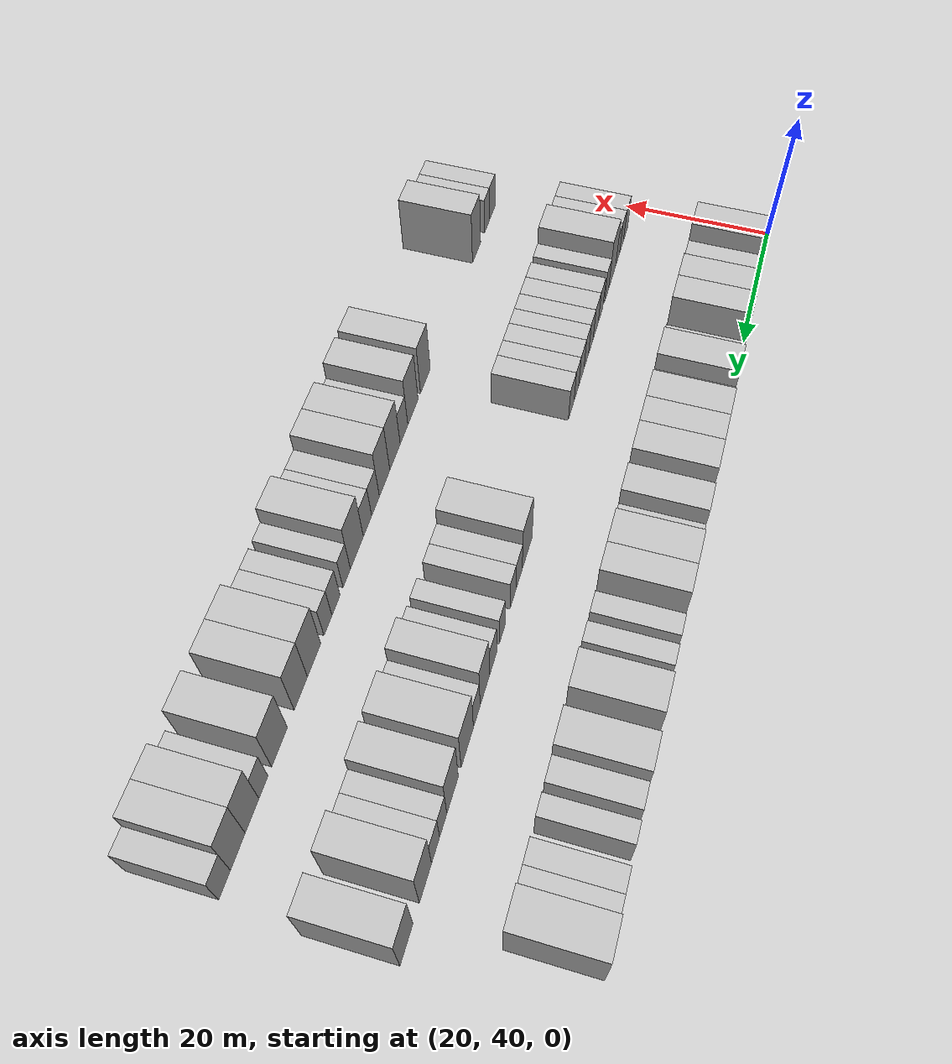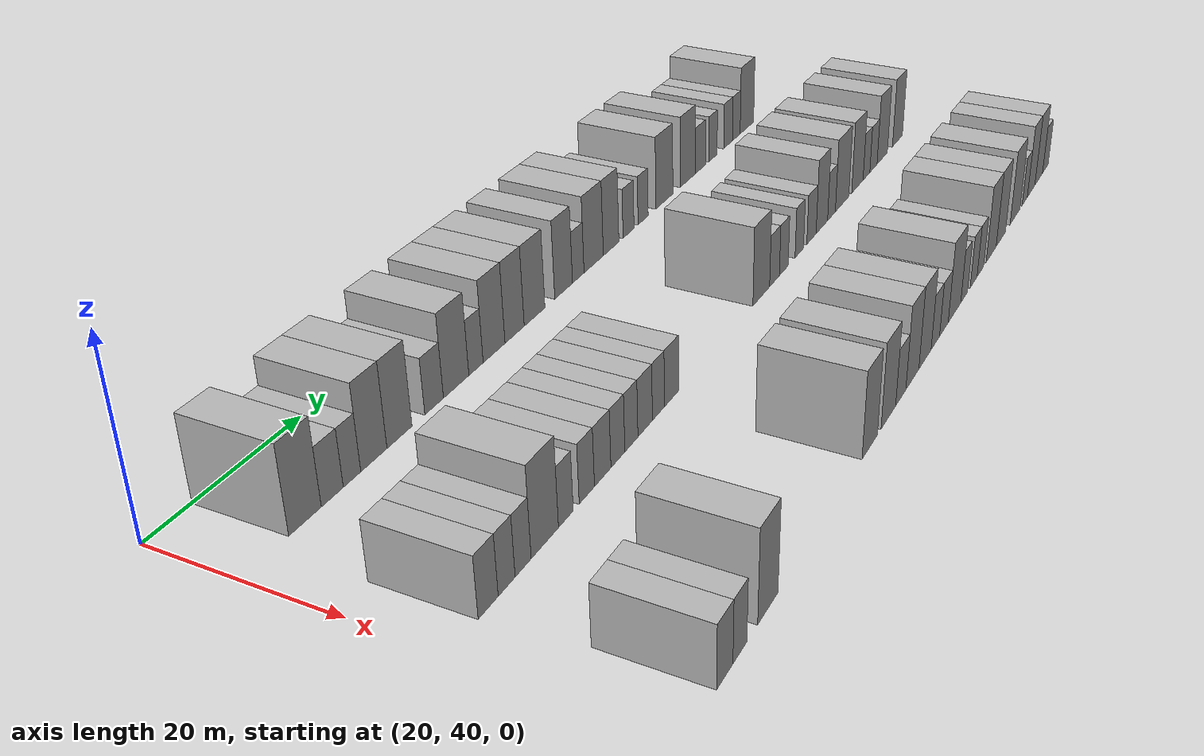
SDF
<sdf version="1.6">
 <world name="default">
  <model name="building_72">
   <static>1</static>
   <pose>25.0000 47.9524 0 0.000000 0.000000 0.000000</pose>
   <link name="link">
    <pose>0 0 4.50 0 0 0</pose>
    <collision name="collision"><geometry><box><size>10.0000 4.1715 9.0000</size></box></geometry></collision>
    <visual name="visual">
     <cast_shadows>0</cast_shadows>
     <geometry><box><size>10.0000 4.1715 9.0000</size></box></geometry>
     <material>
      <script>
       <uri>model://HANNAS_wall/materials/scripts</uri>
       <uri>model://HANNAS_wall/materials/textures</uri>
       <name>vrc/HANNAS_wall</name>
      </script>
     </material>
    </visual>
   </link>
  </model>
  <model name="building_73">
   <static>1</static>
   <pose>25.0000 51.5094 0 0.000000 0.000000 0.000000</pose>
   <link name="link">
    <pose>0 0 3.00 0 0 0</pose>
    <collision name="collision"><geometry><box><size>10.0000 2.9425 6.0000</size></box></geometry></collision>
    <visual name="visual">
     <cast_shadows>0</cast_shadows>
     <geometry><box><size>10.0000 2.9425 6.0000</size></box></geometry>
     <material>
      <script>
       <uri>model://HANNAS_wall/materials/scripts</uri>
       <uri>model://HANNAS_wall/materials/textures</uri>
       <name>vrc/HANNAS_wall</name>
      </script>
     </material>
    </visual>
   </link>
  </model>
  <model name="building_74">
   <static>1</static>
   <pose>25.0000 54.1895 0 0.000000 0.000000 0.000000</pose>
   <link name="link">
    <pose>0 0 3.00 0 0 0</pose>
    <collision name="collision"><geometry><box><size>10.0000 2.4178 6.0000</size></box></geometry></collision>
    <visual name="visual">
     <cast_shadows>0</cast_shadows>
     <geometry><box><size>10.0000 2.4178 6.0000</size></box></geometry>
     <material>
      <script>
       <uri>model://HANNAS_wall/materials/scripts</uri>
       <uri>model://HANNAS_wall/materials/textures</uri>
       <name>vrc/HANNAS_wall</name>
      </script>
     </material>
    </visual>
   </link>
  </model>
  <model name="building_75">
   <static>1</static>
   <pose>25.0000 57.2800 0 0.000000 0.000000 0.000000</pose>
   <link name="link">
    <pose>0 0 4.50 0 0 0</pose>
    <collision name="collision"><geometry><box><size>10.0000 3.7632 9.0000</size></box></geometry></collision>
    <visual name="visual">
     <cast_shadows>0</cast_shadows>
     <geometry><box><size>10.0000 3.7632 9.0000</size></box></geometry>
     <material>
      <script>
       <uri>model://HANNAS_wall/materials/scripts</uri>
       <uri>model://HANNAS_wall/materials/textures</uri>
       <name>vrc/HANNAS_wall</name>
      </script>
     </material>
    </visual>
   </link>
  </model>
  <model name="building_76">
   <static>1</static>
   <pose>25.0000 61.0507 0 0.000000 0.000000 0.000000</pose>
   <link name="link">
    <pose>0 0 4.50 0 0 0</pose>
    <collision name="collision"><geometry><box><size>10.0000 3.7781 9.0000</size></box></geometry></collision>
    <visual name="visual">
     <cast_shadows>0</cast_shadows>
     <geometry><box><size>10.0000 3.7781 9.0000</size></box></geometry>
     <material>
      <script>
       <uri>model://HANNAS_wall/materials/scripts</uri>
       <uri>model://HANNAS_wall/materials/textures</uri>
       <name>vrc/HANNAS_wall</name>
      </script>
     </material>
    </visual>
   </link>
  </model>
  <model name="building_77">
   <static>1</static>
   <pose>25.0000 66.4396 0 0.000000 0.000000 0.000000</pose>
   <link name="link">
    <pose>0 0 3.00 0 0 0</pose>
    <collision name="collision"><geometry><box><size>10.0000 2.9997 6.0000</size></box></geometry></collision>
    <visual name="visual">
     <cast_shadows>0</cast_shadows>
     <geometry><box><size>10.0000 2.9997 6.0000</size></box></geometry>
     <material>
      <script>
       <uri>model://HANNAS_wall/materials/scripts</uri>
       <uri>model://HANNAS_wall/materials/textures</uri>
       <name>vrc/HANNAS_wall</name>
      </script>
     </material>
    </visual>
   </link>
  </model>
  <model name="building_78">
   <static>1</static>
   <pose>25.0000 70.0717 0 0.000000 0.000000 0.000000</pose>
   <link name="link">
    <pose>0 0 4.50 0 0 0</pose>
    <collision name="collision"><geometry><box><size>10.0000 4.2646 9.0000</size></box></geometry></collision>
    <visual name="visual">
     <cast_shadows>0</cast_shadows>
     <geometry><box><size>10.0000 4.2646 9.0000</size></box></geometry>
     <material>
      <script>
       <uri>model://HANNAS_wall/materials/scripts</uri>
       <uri>model://HANNAS_wall/materials/textures</uri>
       <name>vrc/HANNAS_wall</name>
      </script>
     </material>
    </visual>
   </link>
  </model>
  <model name="building_79">
   <static>1</static>
   <pose>25.0000 73.4516 0 0.000000 0.000000 0.000000</pose>
   <link name="link">
    <pose>0 0 3.00 0 0 0</pose>
    <collision name="collision"><geometry><box><size>10.0000 2.4953 6.0000</size></box></geometry></collision>
    <visual name="visual">
     <cast_shadows>0</cast_shadows>
     <geometry><box><size>10.0000 2.4953 6.0000</size></box></geometry>
     <material>
      <script>
       <uri>model://HANNAS_wall/materials/scripts</uri>
       <uri>model://HANNAS_wall/materials/textures</uri>
       <name>vrc/HANNAS_wall</name>
      </script>
     </material>
    </visual>
   </link>
  </model>
  <model name="building_80">
   <static>1</static>
   <pose>25.0000 76.6748 0 0.000000 0.000000 0.000000</pose>
   <link name="link">
    <pose>0 0 4.50 0 0 0</pose>
    <collision name="collision"><geometry><box><size>10.0000 3.9511 9.0000</size></box></geometry></collision>
    <visual name="visual">
     <cast_shadows>0</cast_shadows>
     <geometry><box><size>10.0000 3.9511 9.0000</size></box></geometry>
     <material>
      <script>
       <uri>model://HANNAS_wall/materials/scripts</uri>
       <uri>model://HANNAS_wall/materials/textures</uri>
       <name>vrc/HANNAS_wall</name>
      </script>
     </material>
    </visual>
   </link>
  </model>
  <model name="building_81">
   <static>1</static>
   <pose>25.0000 80.4618 0 0.000000 0.000000 0.000000</pose>
   <link name="link">
    <pose>0 0 4.50 0 0 0</pose>
    <collision name="collision"><geometry><box><size>10.0000 3.6229 9.0000</size></box></geometry></collision>
    <visual name="visual">
     <cast_shadows>0</cast_shadows>
     <geometry><box><size>10.0000 3.6229 9.0000</size></box></geometry>
     <material>
      <script>
       <uri>model://HANNAS_wall/materials/scripts</uri>
       <uri>model://HANNAS_wall/materials/textures</uri>
       <name>vrc/HANNAS_wall</name>
      </script>
     </material>
    </visual>
   </link>
  </model>
  <model name="building_82">
   <static>1</static>
   <pose>25.0000 84.3065 0 0.000000 0.000000 0.000000</pose>
   <link name="link">
    <pose>0 0 4.50 0 0 0</pose>
    <collision name="collision"><geometry><box><size>10.0000 4.0665 9.0000</size></box></geometry></collision>
    <visual name="visual">
     <cast_shadows>0</cast_shadows>
     <geometry><box><size>10.0000 4.0665 9.0000</size></box></geometry>
     <material>
      <script>
       <uri>model://HANNAS_wall/materials/scripts</uri>
       <uri>model://HANNAS_wall/materials/textures</uri>
       <name>vrc/HANNAS_wall</name>
      </script>
     </material>
    </visual>
   </link>
  </model>
  <model name="building_83">
   <static>1</static>
   <pose>25.0000 90.1973 0 0.000000 0.000000 0.000000</pose>
   <link name="link">
    <pose>0 0 4.50 0 0 0</pose>
    <collision name="collision"><geometry><box><size>10.0000 3.7151 9.0000</size></box></geometry></collision>
    <visual name="visual">
     <cast_shadows>0</cast_shadows>
     <geometry><box><size>10.0000 3.7151 9.0000</size></box></geometry>
     <material>
      <script>
       <uri>model://HANNAS_wall/materials/scripts</uri>
       <uri>model://HANNAS_wall/materials/textures</uri>
       <name>vrc/HANNAS_wall</name>
      </script>
     </material>
    </visual>
   </link>
  </model>
  <model name="building_84">
   <static>1</static>
   <pose>25.0000 93.2981 0 0.000000 0.000000 0.000000</pose>
   <link name="link">
    <pose>0 0 3.00 0 0 0</pose>
    <collision name="collision"><geometry><box><size>10.0000 2.4865 6.0000</size></box></geometry></collision>
    <visual name="visual">
     <cast_shadows>0</cast_shadows>
     <geometry><box><size>10.0000 2.4865 6.0000</size></box></geometry>
     <material>
      <script>
       <uri>model://HANNAS_wall/materials/scripts</uri>
       <uri>model://HANNAS_wall/materials/textures</uri>
       <name>vrc/HANNAS_wall</name>
      </script>
     </material>
    </visual>
   </link>
  </model>
  <model name="building_85">
   <static>1</static>
   <pose>25.0000 96.6965 0 0.000000 0.000000 0.000000</pose>
   <link name="link">
    <pose>0 0 4.50 0 0 0</pose>
    <collision name="collision"><geometry><box><size>10.0000 4.3101 9.0000</size></box></geometry></collision>
    <visual name="visual">
     <cast_shadows>0</cast_shadows>
     <geometry><box><size>10.0000 4.3101 9.0000</size></box></geometry>
     <material>
      <script>
       <uri>model://HANNAS_wall/materials/scripts</uri>
       <uri>model://HANNAS_wall/materials/textures</uri>
       <name>vrc/HANNAS_wall</name>
      </script>
     </material>
    </visual>
   </link>
  </model>
  <model name="building_86">
   <static>1</static>
   <pose>25.0000 100.6545 0 0.000000 0.000000 0.000000</pose>
   <link name="link">
    <pose>0 0 4.50 0 0 0</pose>
    <collision name="collision"><geometry><box><size>10.0000 3.6060 9.0000</size></box></geometry></collision>
    <visual name="visual">
     <cast_shadows>0</cast_shadows>
     <geometry><box><size>10.0000 3.6060 9.0000</size></box></geometry>
     <material>
      <script>
       <uri>model://HANNAS_wall/materials/scripts</uri>
       <uri>model://HANNAS_wall/materials/textures</uri>
       <name>vrc/HANNAS_wall</name>
      </script>
     </material>
    </visual>
   </link>
  </model>
  <model name="building_87">
   <static>1</static>
   <pose>25.0000 104.7805 0 0.000000 0.000000 0.000000</pose>
   <link name="link">
    <pose>0 0 3.00 0 0 0</pose>
    <collision name="collision"><geometry><box><size>10.0000 2.6460 6.0000</size></box></geometry></collision>
    <visual name="visual">
     <cast_shadows>0</cast_shadows>
     <geometry><box><size>10.0000 2.6460 6.0000</size></box></geometry>
     <material>
      <script>
       <uri>model://HANNAS_wall/materials/scripts</uri>
       <uri>model://HANNAS_wall/materials/textures</uri>
       <name>vrc/HANNAS_wall</name>
      </script>
     </material>
    </visual>
   </link>
  </model>
  <model name="building_88">
   <static>1</static>
   <pose>25.0000 108.3626 0 0.000000 0.000000 0.000000</pose>
   <link name="link">
    <pose>0 0 3.00 0 0 0</pose>
    <collision name="collision"><geometry><box><size>10.0000 2.5182 6.0000</size></box></geometry></collision>
    <visual name="visual">
     <cast_shadows>0</cast_shadows>
     <geometry><box><size>10.0000 2.5182 6.0000</size></box></geometry>
     <material>
      <script>
       <uri>model://HANNAS_wall/materials/scripts</uri>
       <uri>model://HANNAS_wall/materials/textures</uri>
       <name>vrc/HANNAS_wall</name>
      </script>
     </material>
    </visual>
   </link>
  </model>
  <model name="building_89">
   <static>1</static>
   <pose>25.0000 113.8537 0 0.000000 0.000000 0.000000</pose>
   <link name="link">
    <pose>0 0 4.50 0 0 0</pose>
    <collision name="collision"><geometry><box><size>10.0000 4.4640 9.0000</size></box></geometry></collision>
    <visual name="visual">
     <cast_shadows>0</cast_shadows>
     <geometry><box><size>10.0000 4.4640 9.0000</size></box></geometry>
     <material>
      <script>
       <uri>model://HANNAS_wall/materials/scripts</uri>
       <uri>model://HANNAS_wall/materials/textures</uri>
       <name>vrc/HANNAS_wall</name>
      </script>
     </material>
    </visual>
   </link>
  </model>
  <model name="building_90">
   <static>1</static>
   <pose>25.0000 120.1816 0 0.000000 0.000000 0.000000</pose>
   <link name="link">
    <pose>0 0 4.50 0 0 0</pose>
    <collision name="collision"><geometry><box><size>10.0000 4.1920 9.0000</size></box></geometry></collision>
    <visual name="visual">
     <cast_shadows>0</cast_shadows>
     <geometry><box><size>10.0000 4.1920 9.0000</size></box></geometry>
     <material>
      <script>
       <uri>model://HANNAS_wall/materials/scripts</uri>
       <uri>model://HANNAS_wall/materials/textures</uri>
       <name>vrc/HANNAS_wall</name>
      </script>
     </material>
    </visual>
   </link>
  </model>
  <model name="building_91">
   <static>1</static>
   <pose>25.0000 123.7352 0 0.000000 0.000000 0.000000</pose>
   <link name="link">
    <pose>0 0 3.00 0 0 0</pose>
    <collision name="collision"><geometry><box><size>10.0000 2.9152 6.0000</size></box></geometry></collision>
    <visual name="visual">
     <cast_shadows>0</cast_shadows>
     <geometry><box><size>10.0000 2.9152 6.0000</size></box></geometry>
     <material>
      <script>
       <uri>model://HANNAS_wall/materials/scripts</uri>
       <uri>model://HANNAS_wall/materials/textures</uri>
       <name>vrc/HANNAS_wall</name>
      </script>
     </material>
    </visual>
   </link>
  </model>
  <model name="building_92">
   <static>1</static>
   <pose>25.0000 127.4188 0 0.000000 0.000000 0.000000</pose>
   <link name="link">
    <pose>0 0 3.00 0 0 0</pose>
    <collision name="collision"><geometry><box><size>10.0000 2.4520 6.0000</size></box></geometry></collision>
    <visual name="visual">
     <cast_shadows>0</cast_shadows>
     <geometry><box><size>10.0000 2.4520 6.0000</size></box></geometry>
     <material>
      <script>
       <uri>model://HANNAS_wall/materials/scripts</uri>
       <uri>model://HANNAS_wall/materials/textures</uri>
       <name>vrc/HANNAS_wall</name>
      </script>
     </material>
    </visual>
   </link>
  </model>
  <model name="building_93">
   <static>1</static>
   <pose>25.0000 131.9946 0 0.000000 0.000000 0.000000</pose>
   <link name="link">
    <pose>0 0 3.00 0 0 0</pose>
    <collision name="collision"><geometry><box><size>10.0000 2.6996 6.0000</size></box></geometry></collision>
    <visual name="visual">
     <cast_shadows>0</cast_shadows>
     <geometry><box><size>10.0000 2.6996 6.0000</size></box></geometry>
     <material>
      <script>
       <uri>model://HANNAS_wall/materials/scripts</uri>
       <uri>model://HANNAS_wall/materials/textures</uri>
       <name>vrc/HANNAS_wall</name>
      </script>
     </material>
    </visual>
   </link>
  </model>
  <model name="building_94">
   <static>1</static>
   <pose>25.0000 134.5674 0 0.000000 0.000000 0.000000</pose>
   <link name="link">
    <pose>0 0 3.00 0 0 0</pose>
    <collision name="collision"><geometry><box><size>10.0000 2.4461 6.0000</size></box></geometry></collision>
    <visual name="visual">
     <cast_shadows>0</cast_shadows>
     <geometry><box><size>10.0000 2.4461 6.0000</size></box></geometry>
     <material>
      <script>
       <uri>model://HANNAS_wall/materials/scripts</uri>
       <uri>model://HANNAS_wall/materials/textures</uri>
       <name>vrc/HANNAS_wall</name>
      </script>
     </material>
    </visual>
   </link>
  </model>
  <model name="building_95">
   <static>1</static>
   <pose>25.0000 137.9759 0 0.000000 0.000000 0.000000</pose>
   <link name="link">
    <pose>0 0 4.50 0 0 0</pose>
    <collision name="collision"><geometry><box><size>10.0000 4.3709 9.0000</size></box></geometry></collision>
    <visual name="visual">
     <cast_shadows>0</cast_shadows>
     <geometry><box><size>10.0000 4.3709 9.0000</size></box></geometry>
     <material>
      <script>
       <uri>model://HANNAS_wall/materials/scripts</uri>
       <uri>model://HANNAS_wall/materials/textures</uri>
       <name>vrc/HANNAS_wall</name>
      </script>
     </material>
    </visual>
   </link>
  </model>
  <model name="building_183">
   <static>1</static>
   <pose>44.0000 45.5103 0 0.000000 0.000000 0.000000</pose>
   <link name="link">
    <pose>0 0 3.00 0 0 0</pose>
    <collision name="collision"><geometry><box><size>10.0000 2.8071 6.0000</size></box></geometry></collision>
    <visual name="visual">
     <cast_shadows>0</cast_shadows>
     <geometry><box><size>10.0000 2.8071 6.0000</size></box></geometry>
     <material>
      <script>
       <uri>model://HANNAS_wall/materials/scripts</uri>
       <uri>model://HANNAS_wall/materials/textures</uri>
       <name>vrc/HANNAS_wall</name>
      </script>
     </material>
    </visual>
   </link>
  </model>
  <model name="building_184">
   <static>1</static>
   <pose>44.0000 48.1373 0 0.000000 0.000000 0.000000</pose>
   <link name="link">
    <pose>0 0 3.00 0 0 0</pose>
    <collision name="collision"><geometry><box><size>10.0000 2.4470 6.0000</size></box></geometry></collision>
    <visual name="visual">
     <cast_shadows>0</cast_shadows>
     <geometry><box><size>10.0000 2.4470 6.0000</size></box></geometry>
     <material>
      <script>
       <uri>model://HANNAS_wall/materials/scripts</uri>
       <uri>model://HANNAS_wall/materials/textures</uri>
       <name>vrc/HANNAS_wall</name>
      </script>
     </material>
    </visual>
   </link>
  </model>
  <model name="building_185">
   <static>1</static>
   <pose>44.0000 50.5647 0 0.000000 0.000000 0.000000</pose>
   <link name="link">
    <pose>0 0 3.00 0 0 0</pose>
    <collision name="collision"><geometry><box><size>10.0000 2.4078 6.0000</size></box></geometry></collision>
    <visual name="visual">
     <cast_shadows>0</cast_shadows>
     <geometry><box><size>10.0000 2.4078 6.0000</size></box></geometry>
     <material>
      <script>
       <uri>model://HANNAS_wall/materials/scripts</uri>
       <uri>model://HANNAS_wall/materials/textures</uri>
       <name>vrc/HANNAS_wall</name>
      </script>
     </material>
    </visual>
   </link>
  </model>
  <model name="building_186">
   <static>1</static>
   <pose>44.0000 53.9114 0 0.000000 0.000000 0.000000</pose>
   <link name="link">
    <pose>0 0 4.50 0 0 0</pose>
    <collision name="collision"><geometry><box><size>10.0000 4.2855 9.0000</size></box></geometry></collision>
    <visual name="visual">
     <cast_shadows>0</cast_shadows>
     <geometry><box><size>10.0000 4.2855 9.0000</size></box></geometry>
     <material>
      <script>
       <uri>model://HANNAS_wall/materials/scripts</uri>
       <uri>model://HANNAS_wall/materials/textures</uri>
       <name>vrc/HANNAS_wall</name>
      </script>
     </material>
    </visual>
   </link>
  </model>
  <model name="building_187">
   <static>1</static>
   <pose>44.0000 57.2633 0 0.000000 0.000000 0.000000</pose>
   <link name="link">
    <pose>0 0 3.00 0 0 0</pose>
    <collision name="collision"><geometry><box><size>10.0000 2.4183 6.0000</size></box></geometry></collision>
    <visual name="visual">
     <cast_shadows>0</cast_shadows>
     <geometry><box><size>10.0000 2.4183 6.0000</size></box></geometry>
     <material>
      <script>
       <uri>model://HANNAS_wall/materials/scripts</uri>
       <uri>model://HANNAS_wall/materials/textures</uri>
       <name>vrc/HANNAS_wall</name>
      </script>
     </material>
    </visual>
   </link>
  </model>
  <model name="building_188">
   <static>1</static>
   <pose>44.0000 60.7866 0 0.000000 0.000000 0.000000</pose>
   <link name="link">
    <pose>0 0 3.00 0 0 0</pose>
    <collision name="collision"><geometry><box><size>10.0000 2.6282 6.0000</size></box></geometry></collision>
    <visual name="visual">
     <cast_shadows>0</cast_shadows>
     <geometry><box><size>10.0000 2.6282 6.0000</size></box></geometry>
     <material>
      <script>
       <uri>model://HANNAS_wall/materials/scripts</uri>
       <uri>model://HANNAS_wall/materials/textures</uri>
       <name>vrc/HANNAS_wall</name>
      </script>
     </material>
    </visual>
   </link>
  </model>
  <model name="building_189">
   <static>1</static>
   <pose>44.0000 63.5648 0 0.000000 0.000000 0.000000</pose>
   <link name="link">
    <pose>0 0 3.00 0 0 0</pose>
    <collision name="collision"><geometry><box><size>10.0000 2.9282 6.0000</size></box></geometry></collision>
    <visual name="visual">
     <cast_shadows>0</cast_shadows>
     <geometry><box><size>10.0000 2.9282 6.0000</size></box></geometry>
     <material>
      <script>
       <uri>model://HANNAS_wall/materials/scripts</uri>
       <uri>model://HANNAS_wall/materials/textures</uri>
       <name>vrc/HANNAS_wall</name>
      </script>
     </material>
    </visual>
   </link>
  </model>
  <model name="building_190">
   <static>1</static>
   <pose>44.0000 66.3136 0 0.000000 0.000000 0.000000</pose>
   <link name="link">
    <pose>0 0 3.00 0 0 0</pose>
    <collision name="collision"><geometry><box><size>10.0000 2.5694 6.0000</size></box></geometry></collision>
    <visual name="visual">
     <cast_shadows>0</cast_shadows>
     <geometry><box><size>10.0000 2.5694 6.0000</size></box></geometry>
     <material>
      <script>
       <uri>model://HANNAS_wall/materials/scripts</uri>
       <uri>model://HANNAS_wall/materials/textures</uri>
       <name>vrc/HANNAS_wall</name>
      </script>
     </material>
    </visual>
   </link>
  </model>
  <model name="building_191">
   <static>1</static>
   <pose>44.0000 68.8415 0 0.000000 0.000000 0.000000</pose>
   <link name="link">
    <pose>0 0 3.00 0 0 0</pose>
    <collision name="collision"><geometry><box><size>10.0000 2.4864 6.0000</size></box></geometry></collision>
    <visual name="visual">
     <cast_shadows>0</cast_shadows>
     <geometry><box><size>10.0000 2.4864 6.0000</size></box></geometry>
     <material>
      <script>
       <uri>model://HANNAS_wall/materials/scripts</uri>
       <uri>model://HANNAS_wall/materials/textures</uri>
       <name>vrc/HANNAS_wall</name>
      </script>
     </material>
    </visual>
   </link>
  </model>
  <model name="building_192">
   <static>1</static>
   <pose>44.0000 71.5087 0 0.000000 0.000000 0.000000</pose>
   <link name="link">
    <pose>0 0 3.00 0 0 0</pose>
    <collision name="collision"><geometry><box><size>10.0000 2.8480 6.0000</size></box></geometry></collision>
    <visual name="visual">
     <cast_shadows>0</cast_shadows>
     <geometry><box><size>10.0000 2.8480 6.0000</size></box></geometry>
     <material>
      <script>
       <uri>model://HANNAS_wall/materials/scripts</uri>
       <uri>model://HANNAS_wall/materials/textures</uri>
       <name>vrc/HANNAS_wall</name>
      </script>
     </material>
    </visual>
   </link>
  </model>
  <model name="building_193">
   <static>1</static>
   <pose>44.0000 74.1553 0 0.000000 0.000000 0.000000</pose>
   <link name="link">
    <pose>0 0 3.00 0 0 0</pose>
    <collision name="collision"><geometry><box><size>10.0000 2.4451 6.0000</size></box></geometry></collision>
    <visual name="visual">
     <cast_shadows>0</cast_shadows>
     <geometry><box><size>10.0000 2.4451 6.0000</size></box></geometry>
     <material>
      <script>
       <uri>model://HANNAS_wall/materials/scripts</uri>
       <uri>model://HANNAS_wall/materials/textures</uri>
       <name>vrc/HANNAS_wall</name>
      </script>
     </material>
    </visual>
   </link>
  </model>
  <model name="building_194">
   <static>1</static>
   <pose>44.0000 76.8600 0 0.000000 0.000000 0.000000</pose>
   <link name="link">
    <pose>0 0 3.00 0 0 0</pose>
    <collision name="collision"><geometry><box><size>10.0000 2.9644 6.0000</size></box></geometry></collision>
    <visual name="visual">
     <cast_shadows>0</cast_shadows>
     <geometry><box><size>10.0000 2.9644 6.0000</size></box></geometry>
     <material>
      <script>
       <uri>model://HANNAS_wall/materials/scripts</uri>
       <uri>model://HANNAS_wall/materials/textures</uri>
       <name>vrc/HANNAS_wall</name>
      </script>
     </material>
    </visual>
   </link>
  </model>
  <model name="building_195">
   <static>1</static>
   <pose>44.0000 97.9656 0 0.000000 0.000000 0.000000</pose>
   <link name="link">
    <pose>0 0 4.50 0 0 0</pose>
    <collision name="collision"><geometry><box><size>10.0000 4.4156 9.0000</size></box></geometry></collision>
    <visual name="visual">
     <cast_shadows>0</cast_shadows>
     <geometry><box><size>10.0000 4.4156 9.0000</size></box></geometry>
     <material>
      <script>
       <uri>model://HANNAS_wall/materials/scripts</uri>
       <uri>model://HANNAS_wall/materials/textures</uri>
       <name>vrc/HANNAS_wall</name>
      </script>
     </material>
    </visual>
   </link>
  </model>
  <model name="building_196">
   <static>1</static>
   <pose>44.0000 101.5051 0 0.000000 0.000000 0.000000</pose>
   <link name="link">
    <pose>0 0 3.00 0 0 0</pose>
    <collision name="collision"><geometry><box><size>10.0000 2.6633 6.0000</size></box></geometry></collision>
    <visual name="visual">
     <cast_shadows>0</cast_shadows>
     <geometry><box><size>10.0000 2.6633 6.0000</size></box></geometry>
     <material>
      <script>
       <uri>model://HANNAS_wall/materials/scripts</uri>
       <uri>model://HANNAS_wall/materials/textures</uri>
       <name>vrc/HANNAS_wall</name>
      </script>
     </material>
    </visual>
   </link>
  </model>
  <model name="building_197">
   <static>1</static>
   <pose>44.0000 104.0678 0 0.000000 0.000000 0.000000</pose>
   <link name="link">
    <pose>0 0 3.00 0 0 0</pose>
    <collision name="collision"><geometry><box><size>10.0000 2.4621 6.0000</size></box></geometry></collision>
    <visual name="visual">
     <cast_shadows>0</cast_shadows>
     <geometry><box><size>10.0000 2.4621 6.0000</size></box></geometry>
     <material>
      <script>
       <uri>model://HANNAS_wall/materials/scripts</uri>
       <uri>model://HANNAS_wall/materials/textures</uri>
       <name>vrc/HANNAS_wall</name>
      </script>
     </material>
    </visual>
   </link>
  </model>
  <model name="building_198">
   <static>1</static>
   <pose>44.0000 108.5365 0 0.000000 0.000000 0.000000</pose>
   <link name="link">
    <pose>0 0 3.00 0 0 0</pose>
    <collision name="collision"><geometry><box><size>10.0000 2.4753 6.0000</size></box></geometry></collision>
    <visual name="visual">
     <cast_shadows>0</cast_shadows>
     <geometry><box><size>10.0000 2.4753 6.0000</size></box></geometry>
     <material>
      <script>
       <uri>model://HANNAS_wall/materials/scripts</uri>
       <uri>model://HANNAS_wall/materials/textures</uri>
       <name>vrc/HANNAS_wall</name>
      </script>
     </material>
    </visual>
   </link>
  </model>
  <model name="building_199">
   <static>1</static>
   <pose>44.0000 112.1929 0 0.000000 0.000000 0.000000</pose>
   <link name="link">
    <pose>0 0 3.00 0 0 0</pose>
    <collision name="collision"><geometry><box><size>10.0000 2.8374 6.0000</size></box></geometry></collision>
    <visual name="visual">
     <cast_shadows>0</cast_shadows>
     <geometry><box><size>10.0000 2.8374 6.0000</size></box></geometry>
     <material>
      <script>
       <uri>model://HANNAS_wall/materials/scripts</uri>
       <uri>model://HANNAS_wall/materials/textures</uri>
       <name>vrc/HANNAS_wall</name>
      </script>
     </material>
    </visual>
   </link>
  </model>
  <model name="building_200">
   <static>1</static>
   <pose>44.0000 115.4178 0 0.000000 0.000000 0.000000</pose>
   <link name="link">
    <pose>0 0 4.50 0 0 0</pose>
    <collision name="collision"><geometry><box><size>10.0000 3.6125 9.0000</size></box></geometry></collision>
    <visual name="visual">
     <cast_shadows>0</cast_shadows>
     <geometry><box><size>10.0000 3.6125 9.0000</size></box></geometry>
     <material>
      <script>
       <uri>model://HANNAS_wall/materials/scripts</uri>
       <uri>model://HANNAS_wall/materials/textures</uri>
       <name>vrc/HANNAS_wall</name>
      </script>
     </material>
    </visual>
   </link>
  </model>
  <model name="building_201">
   <static>1</static>
   <pose>44.0000 118.4897 0 0.000000 0.000000 0.000000</pose>
   <link name="link">
    <pose>0 0 3.00 0 0 0</pose>
    <collision name="collision"><geometry><box><size>10.0000 2.5311 6.0000</size></box></geometry></collision>
    <visual name="visual">
     <cast_shadows>0</cast_shadows>
     <geometry><box><size>10.0000 2.5311 6.0000</size></box></geometry>
     <material>
      <script>
       <uri>model://HANNAS_wall/materials/scripts</uri>
       <uri>model://HANNAS_wall/materials/textures</uri>
       <name>vrc/HANNAS_wall</name>
      </script>
     </material>
    </visual>
   </link>
  </model>
  <model name="building_202">
   <static>1</static>
   <pose>44.0000 121.9959 0 0.000000 0.000000 0.000000</pose>
   <link name="link">
    <pose>0 0 4.50 0 0 0</pose>
    <collision name="collision"><geometry><box><size>10.0000 4.4814 9.0000</size></box></geometry></collision>
    <visual name="visual">
     <cast_shadows>0</cast_shadows>
     <geometry><box><size>10.0000 4.4814 9.0000</size></box></geometry>
     <material>
      <script>
       <uri>model://HANNAS_wall/materials/scripts</uri>
       <uri>model://HANNAS_wall/materials/textures</uri>
       <name>vrc/HANNAS_wall</name>
      </script>
     </material>
    </visual>
   </link>
  </model>
  <model name="building_203">
   <static>1</static>
   <pose>44.0000 127.2355 0 0.000000 0.000000 0.000000</pose>
   <link name="link">
    <pose>0 0 4.50 0 0 0</pose>
    <collision name="collision"><geometry><box><size>10.0000 3.9977 9.0000</size></box></geometry></collision>
    <visual name="visual">
     <cast_shadows>0</cast_shadows>
     <geometry><box><size>10.0000 3.9977 9.0000</size></box></geometry>
     <material>
      <script>
       <uri>model://HANNAS_wall/materials/scripts</uri>
       <uri>model://HANNAS_wall/materials/textures</uri>
       <name>vrc/HANNAS_wall</name>
      </script>
     </material>
    </visual>
   </link>
  </model>
  <model name="building_204">
   <static>1</static>
   <pose>44.0000 130.4550 0 0.000000 0.000000 0.000000</pose>
   <link name="link">
    <pose>0 0 3.00 0 0 0</pose>
    <collision name="collision"><geometry><box><size>10.0000 2.4414 6.0000</size></box></geometry></collision>
    <visual name="visual">
     <cast_shadows>0</cast_shadows>
     <geometry><box><size>10.0000 2.4414 6.0000</size></box></geometry>
     <material>
      <script>
       <uri>model://HANNAS_wall/materials/scripts</uri>
       <uri>model://HANNAS_wall/materials/textures</uri>
       <name>vrc/HANNAS_wall</name>
      </script>
     </material>
    </visual>
   </link>
  </model>
  <model name="building_205">
   <static>1</static>
   <pose>44.0000 133.0089 0 0.000000 0.000000 0.000000</pose>
   <link name="link">
    <pose>0 0 3.00 0 0 0</pose>
    <collision name="collision"><geometry><box><size>10.0000 2.6664 6.0000</size></box></geometry></collision>
    <visual name="visual">
     <cast_shadows>0</cast_shadows>
     <geometry><box><size>10.0000 2.6664 6.0000</size></box></geometry>
     <material>
      <script>
       <uri>model://HANNAS_wall/materials/scripts</uri>
       <uri>model://HANNAS_wall/materials/textures</uri>
       <name>vrc/HANNAS_wall</name>
      </script>
     </material>
    </visual>
   </link>
  </model>
  <model name="building_206">
   <static>1</static>
   <pose>44.0000 136.3009 0 0.000000 0.000000 0.000000</pose>
   <link name="link">
    <pose>0 0 4.50 0 0 0</pose>
    <collision name="collision"><geometry><box><size>10.0000 3.9175 9.0000</size></box></geometry></collision>
    <visual name="visual">
     <cast_shadows>0</cast_shadows>
     <geometry><box><size>10.0000 3.9175 9.0000</size></box></geometry>
     <material>
      <script>
       <uri>model://HANNAS_wall/materials/scripts</uri>
       <uri>model://HANNAS_wall/materials/textures</uri>
       <name>vrc/HANNAS_wall</name>
      </script>
     </material>
    </visual>
   </link>
  </model>
  <model name="building_207">
   <static>1</static>
   <pose>44.0000 142.2390 0 0.000000 0.000000 0.000000</pose>
   <link name="link">
    <pose>0 0 4.50 0 0 0</pose>
    <collision name="collision"><geometry><box><size>10.0000 3.9587 9.0000</size></box></geometry></collision>
    <visual name="visual">
     <cast_shadows>0</cast_shadows>
     <geometry><box><size>10.0000 3.9587 9.0000</size></box></geometry>
     <material>
      <script>
       <uri>model://HANNAS_wall/materials/scripts</uri>
       <uri>model://HANNAS_wall/materials/textures</uri>
       <name>vrc/HANNAS_wall</name>
      </script>
     </material>
    </visual>
   </link>
  </model>
  <model name="building_306">
   <static>1</static>
   <pose>63.0000 46.5538 0 0.000000 0.000000 0.000000</pose>
   <link name="link">
    <pose>0 0 3.00 0 0 0</pose>
    <collision name="collision"><geometry><box><size>10.0000 2.8117 6.0000</size></box></geometry></collision>
    <visual name="visual">
     <cast_shadows>0</cast_shadows>
     <geometry><box><size>10.0000 2.8117 6.0000</size></box></geometry>
     <material>
      <script>
       <uri>model://HANNAS_wall/materials/scripts</uri>
       <uri>model://HANNAS_wall/materials/textures</uri>
       <name>vrc/HANNAS_wall</name>
      </script>
     </material>
    </visual>
   </link>
  </model>
  <model name="building_307">
   <static>1</static>
   <pose>63.0000 49.2131 0 0.000000 0.000000 0.000000</pose>
   <link name="link">
    <pose>0 0 3.00 0 0 0</pose>
    <collision name="collision"><geometry><box><size>10.0000 2.5069 6.0000</size></box></geometry></collision>
    <visual name="visual">
     <cast_shadows>0</cast_shadows>
     <geometry><box><size>10.0000 2.5069 6.0000</size></box></geometry>
     <material>
      <script>
       <uri>model://HANNAS_wall/materials/scripts</uri>
       <uri>model://HANNAS_wall/materials/textures</uri>
       <name>vrc/HANNAS_wall</name>
      </script>
     </material>
    </visual>
   </link>
  </model>
  <model name="building_308">
   <static>1</static>
   <pose>63.0000 54.4291 0 0.000000 0.000000 0.000000</pose>
   <link name="link">
    <pose>0 0 4.50 0 0 0</pose>
    <collision name="collision"><geometry><box><size>10.0000 3.9251 9.0000</size></box></geometry></collision>
    <visual name="visual">
     <cast_shadows>0</cast_shadows>
     <geometry><box><size>10.0000 3.9251 9.0000</size></box></geometry>
     <material>
      <script>
       <uri>model://HANNAS_wall/materials/scripts</uri>
       <uri>model://HANNAS_wall/materials/textures</uri>
       <name>vrc/HANNAS_wall</name>
      </script>
     </material>
    </visual>
   </link>
  </model>
  <model name="building_309">
   <static>1</static>
   <pose>63.0000 77.4188 0 0.000000 0.000000 0.000000</pose>
   <link name="link">
    <pose>0 0 4.50 0 0 0</pose>
    <collision name="collision"><geometry><box><size>10.0000 4.0181 9.0000</size></box></geometry></collision>
    <visual name="visual">
     <cast_shadows>0</cast_shadows>
     <geometry><box><size>10.0000 4.0181 9.0000</size></box></geometry>
     <material>
      <script>
       <uri>model://HANNAS_wall/materials/scripts</uri>
       <uri>model://HANNAS_wall/materials/textures</uri>
       <name>vrc/HANNAS_wall</name>
      </script>
     </material>
    </visual>
   </link>
  </model>
  <model name="building_310">
   <static>1</static>
   <pose>63.0000 82.4681 0 0.000000 0.000000 0.000000</pose>
   <link name="link">
    <pose>0 0 4.50 0 0 0</pose>
    <collision name="collision"><geometry><box><size>10.0000 4.0804 9.0000</size></box></geometry></collision>
    <visual name="visual">
     <cast_shadows>0</cast_shadows>
     <geometry><box><size>10.0000 4.0804 9.0000</size></box></geometry>
     <material>
      <script>
       <uri>model://HANNAS_wall/materials/scripts</uri>
       <uri>model://HANNAS_wall/materials/textures</uri>
       <name>vrc/HANNAS_wall</name>
      </script>
     </material>
    </visual>
   </link>
  </model>
  <model name="building_311">
   <static>1</static>
   <pose>63.0000 85.9943 0 0.000000 0.000000 0.000000</pose>
   <link name="link">
    <pose>0 0 3.00 0 0 0</pose>
    <collision name="collision"><geometry><box><size>10.0000 2.9720 6.0000</size></box></geometry></collision>
    <visual name="visual">
     <cast_shadows>0</cast_shadows>
     <geometry><box><size>10.0000 2.9720 6.0000</size></box></geometry>
     <material>
      <script>
       <uri>model://HANNAS_wall/materials/scripts</uri>
       <uri>model://HANNAS_wall/materials/textures</uri>
       <name>vrc/HANNAS_wall</name>
      </script>
     </material>
    </visual>
   </link>
  </model>
  <model name="building_312">
   <static>1</static>
   <pose>63.0000 89.4513 0 0.000000 0.000000 0.000000</pose>
   <link name="link">
    <pose>0 0 4.50 0 0 0</pose>
    <collision name="collision"><geometry><box><size>10.0000 3.9420 9.0000</size></box></geometry></collision>
    <visual name="visual">
     <cast_shadows>0</cast_shadows>
     <geometry><box><size>10.0000 3.9420 9.0000</size></box></geometry>
     <material>
      <script>
       <uri>model://HANNAS_wall/materials/scripts</uri>
       <uri>model://HANNAS_wall/materials/textures</uri>
       <name>vrc/HANNAS_wall</name>
      </script>
     </material>
    </visual>
   </link>
  </model>
  <model name="building_313">
   <static>1</static>
   <pose>63.0000 93.3605 0 0.000000 0.000000 0.000000</pose>
   <link name="link">
    <pose>0 0 4.50 0 0 0</pose>
    <collision name="collision"><geometry><box><size>10.0000 3.8766 9.0000</size></box></geometry></collision>
    <visual name="visual">
     <cast_shadows>0</cast_shadows>
     <geometry><box><size>10.0000 3.8766 9.0000</size></box></geometry>
     <material>
      <script>
       <uri>model://HANNAS_wall/materials/scripts</uri>
       <uri>model://HANNAS_wall/materials/textures</uri>
       <name>vrc/HANNAS_wall</name>
      </script>
     </material>
    </visual>
   </link>
  </model>
  <model name="building_314">
   <static>1</static>
   <pose>63.0000 96.6928 0 0.000000 0.000000 0.000000</pose>
   <link name="link">
    <pose>0 0 3.00 0 0 0</pose>
    <collision name="collision"><geometry><box><size>10.0000 2.7879 6.0000</size></box></geometry></collision>
    <visual name="visual">
     <cast_shadows>0</cast_shadows>
     <geometry><box><size>10.0000 2.7879 6.0000</size></box></geometry>
     <material>
      <script>
       <uri>model://HANNAS_wall/materials/scripts</uri>
       <uri>model://HANNAS_wall/materials/textures</uri>
       <name>vrc/HANNAS_wall</name>
      </script>
     </material>
    </visual>
   </link>
  </model>
  <model name="building_315">
   <static>1</static>
   <pose>63.0000 99.5501 0 0.000000 0.000000 0.000000</pose>
   <link name="link">
    <pose>0 0 3.00 0 0 0</pose>
    <collision name="collision"><geometry><box><size>10.0000 2.9268 6.0000</size></box></geometry></collision>
    <visual name="visual">
     <cast_shadows>0</cast_shadows>
     <geometry><box><size>10.0000 2.9268 6.0000</size></box></geometry>
     <material>
      <script>
       <uri>model://HANNAS_wall/materials/scripts</uri>
       <uri>model://HANNAS_wall/materials/textures</uri>
       <name>vrc/HANNAS_wall</name>
      </script>
     </material>
    </visual>
   </link>
  </model>
  <model name="building_316">
   <static>1</static>
   <pose>63.0000 103.2306 0 0.000000 0.000000 0.000000</pose>
   <link name="link">
    <pose>0 0 4.50 0 0 0</pose>
    <collision name="collision"><geometry><box><size>10.0000 4.4341 9.0000</size></box></geometry></collision>
    <visual name="visual">
     <cast_shadows>0</cast_shadows>
     <geometry><box><size>10.0000 4.4341 9.0000</size></box></geometry>
     <material>
      <script>
       <uri>model://HANNAS_wall/materials/scripts</uri>
       <uri>model://HANNAS_wall/materials/textures</uri>
       <name>vrc/HANNAS_wall</name>
      </script>
     </material>
    </visual>
   </link>
  </model>
  <model name="building_317">
   <static>1</static>
   <pose>63.0000 106.6834 0 0.000000 0.000000 0.000000</pose>
   <link name="link">
    <pose>0 0 3.00 0 0 0</pose>
    <collision name="collision"><geometry><box><size>10.0000 2.4715 6.0000</size></box></geometry></collision>
    <visual name="visual">
     <cast_shadows>0</cast_shadows>
     <geometry><box><size>10.0000 2.4715 6.0000</size></box></geometry>
     <material>
      <script>
       <uri>model://HANNAS_wall/materials/scripts</uri>
       <uri>model://HANNAS_wall/materials/textures</uri>
       <name>vrc/HANNAS_wall</name>
      </script>
     </material>
    </visual>
   </link>
  </model>
  <model name="building_318">
   <static>1</static>
   <pose>63.0000 110.2327 0 0.000000 0.000000 0.000000</pose>
   <link name="link">
    <pose>0 0 3.00 0 0 0</pose>
    <collision name="collision"><geometry><box><size>10.0000 2.6271 6.0000</size></box></geometry></collision>
    <visual name="visual">
     <cast_shadows>0</cast_shadows>
     <geometry><box><size>10.0000 2.6271 6.0000</size></box></geometry>
     <material>
      <script>
       <uri>model://HANNAS_wall/materials/scripts</uri>
       <uri>model://HANNAS_wall/materials/textures</uri>
       <name>vrc/HANNAS_wall</name>
      </script>
     </material>
    </visual>
   </link>
  </model>
  <model name="building_319">
   <static>1</static>
   <pose>63.0000 112.8182 0 0.000000 0.000000 0.000000</pose>
   <link name="link">
    <pose>0 0 3.00 0 0 0</pose>
    <collision name="collision"><geometry><box><size>10.0000 2.5440 6.0000</size></box></geometry></collision>
    <visual name="visual">
     <cast_shadows>0</cast_shadows>
     <geometry><box><size>10.0000 2.5440 6.0000</size></box></geometry>
     <material>
      <script>
       <uri>model://HANNAS_wall/materials/scripts</uri>
       <uri>model://HANNAS_wall/materials/textures</uri>
       <name>vrc/HANNAS_wall</name>
      </script>
     </material>
    </visual>
   </link>
  </model>
  <model name="building_320">
   <static>1</static>
   <pose>63.0000 117.1367 0 0.000000 0.000000 0.000000</pose>
   <link name="link">
    <pose>0 0 4.50 0 0 0</pose>
    <collision name="collision"><geometry><box><size>10.0000 4.0930 9.0000</size></box></geometry></collision>
    <visual name="visual">
     <cast_shadows>0</cast_shadows>
     <geometry><box><size>10.0000 4.0930 9.0000</size></box></geometry>
     <material>
      <script>
       <uri>model://HANNAS_wall/materials/scripts</uri>
       <uri>model://HANNAS_wall/materials/textures</uri>
       <name>vrc/HANNAS_wall</name>
      </script>
     </material>
    </visual>
   </link>
  </model>
  <model name="building_321">
   <static>1</static>
   <pose>63.0000 121.1453 0 0.000000 0.000000 0.000000</pose>
   <link name="link">
    <pose>0 0 4.50 0 0 0</pose>
    <collision name="collision"><geometry><box><size>10.0000 3.9242 9.0000</size></box></geometry></collision>
    <visual name="visual">
     <cast_shadows>0</cast_shadows>
     <geometry><box><size>10.0000 3.9242 9.0000</size></box></geometry>
     <material>
      <script>
       <uri>model://HANNAS_wall/materials/scripts</uri>
       <uri>model://HANNAS_wall/materials/textures</uri>
       <name>vrc/HANNAS_wall</name>
      </script>
     </material>
    </visual>
   </link>
  </model>
  <model name="building_322">
   <static>1</static>
   <pose>63.0000 127.3285 0 0.000000 0.000000 0.000000</pose>
   <link name="link">
    <pose>0 0 4.50 0 0 0</pose>
    <collision name="collision"><geometry><box><size>10.0000 4.4423 9.0000</size></box></geometry></collision>
    <visual name="visual">
     <cast_shadows>0</cast_shadows>
     <geometry><box><size>10.0000 4.4423 9.0000</size></box></geometry>
     <material>
      <script>
       <uri>model://HANNAS_wall/materials/scripts</uri>
       <uri>model://HANNAS_wall/materials/textures</uri>
       <name>vrc/HANNAS_wall</name>
      </script>
     </material>
    </visual>
   </link>
  </model>
  <model name="building_323">
   <static>1</static>
   <pose>63.0000 131.7762 0 0.000000 0.000000 0.000000</pose>
   <link name="link">
    <pose>0 0 3.00 0 0 0</pose>
    <collision name="collision"><geometry><box><size>10.0000 2.4531 6.0000</size></box></geometry></collision>
    <visual name="visual">
     <cast_shadows>0</cast_shadows>
     <geometry><box><size>10.0000 2.4531 6.0000</size></box></geometry>
     <material>
      <script>
       <uri>model://HANNAS_wall/materials/scripts</uri>
       <uri>model://HANNAS_wall/materials/textures</uri>
       <name>vrc/HANNAS_wall</name>
      </script>
     </material>
    </visual>
   </link>
  </model>
  <model name="building_324">
   <static>1</static>
   <pose>63.0000 134.8169 0 0.000000 0.000000 0.000000</pose>
   <link name="link">
    <pose>0 0 4.50 0 0 0</pose>
    <collision name="collision"><geometry><box><size>10.0000 3.6283 9.0000</size></box></geometry></collision>
    <visual name="visual">
     <cast_shadows>0</cast_shadows>
     <geometry><box><size>10.0000 3.6283 9.0000</size></box></geometry>
     <material>
      <script>
       <uri>model://HANNAS_wall/materials/scripts</uri>
       <uri>model://HANNAS_wall/materials/textures</uri>
       <name>vrc/HANNAS_wall</name>
      </script>
     </material>
    </visual>
   </link>
  </model>
  <model name="building_325">
   <static>1</static>
   <pose>63.0000 138.5245 0 0.000000 0.000000 0.000000</pose>
   <link name="link">
    <pose>0 0 4.50 0 0 0</pose>
    <collision name="collision"><geometry><box><size>10.0000 3.7868 9.0000</size></box></geometry></collision>
    <visual name="visual">
     <cast_shadows>0</cast_shadows>
     <geometry><box><size>10.0000 3.7868 9.0000</size></box></geometry>
     <material>
      <script>
       <uri>model://HANNAS_wall/materials/scripts</uri>
       <uri>model://HANNAS_wall/materials/textures</uri>
       <name>vrc/HANNAS_wall</name>
      </script>
     </material>
    </visual>
   </link>
  </model>
  <model name="building_326">
   <static>1</static>
   <pose>63.0000 141.8773 0 0.000000 0.000000 0.000000</pose>
   <link name="link">
    <pose>0 0 3.00 0 0 0</pose>
    <collision name="collision"><geometry><box><size>10.0000 2.9190 6.0000</size></box></geometry></collision>
    <visual name="visual">
     <cast_shadows>0</cast_shadows>
     <geometry><box><size>10.0000 2.9190 6.0000</size></box></geometry>
     <material>
      <script>
       <uri>model://HANNAS_wall/materials/scripts</uri>
       <uri>model://HANNAS_wall/materials/textures</uri>
       <name>vrc/HANNAS_wall</name>
      </script>
     </material>
    </visual>
   </link>
  </model>
 </world>
</sdf>
